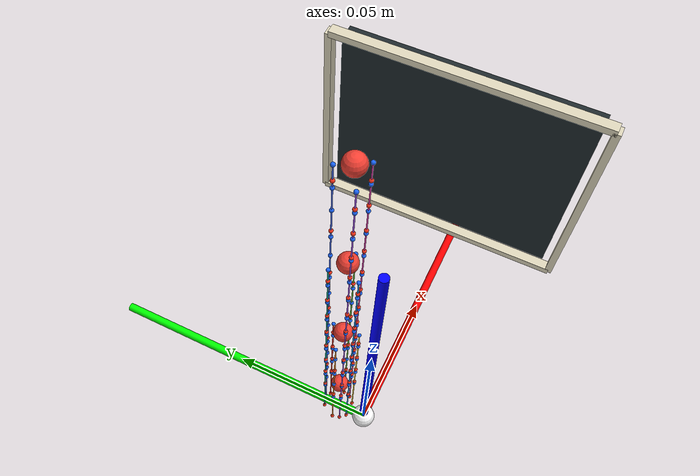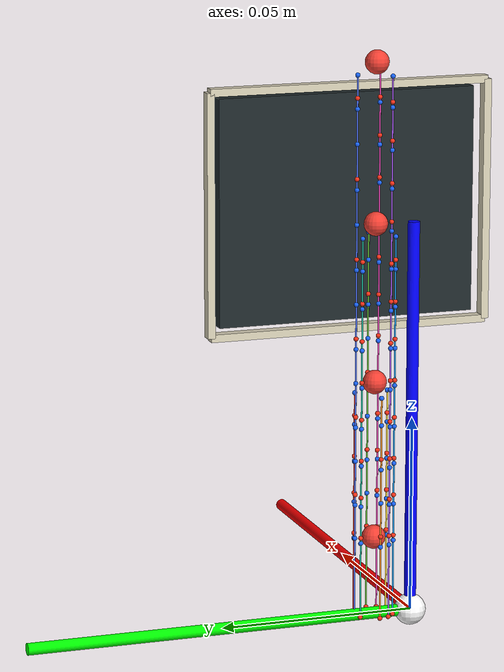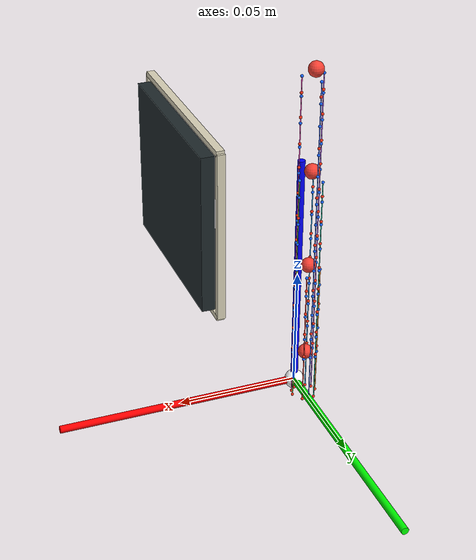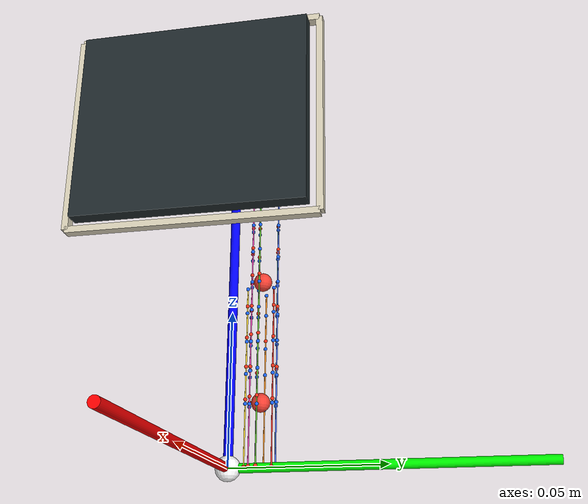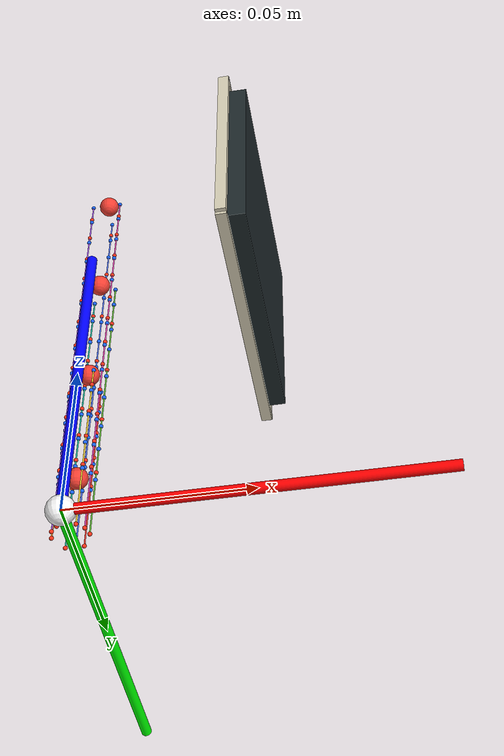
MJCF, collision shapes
<mujoco model="single_spatial_executor">
  <compiler angle="radian" />
  <option timestep="0.001" integrator="implicitfast" iterations="50" gravity="0 0 0" />
  <visual>
    <global azimuth="315" elevation="-25" offwidth="640" offheight="480" />
    <headlight ambient="0.35 0.35 0.35" diffuse="0.75 0.75 0.75" specular="0.2 0.2 0.2" />
    <map znear="0.001" zfar="2" />
    <quality shadowsize="2048" />
  </visual>
  <asset>
    <mesh name="shared_base_visual_mesh" file="../../assets/meshes/dual_arm/shared_base/dual_base_visual.stl" scale="0.001 0.001 0.001" />
    <mesh name="executor_base_visual_mesh" file="../../assets/meshes/dual_arm/executor/base_visual.stl" scale="0.001 0.001 0.001" />
    <mesh name="executor_segment_1_link_1_visual_mesh" file="../../assets/meshes/dual_arm/executor/segment_1_link_1_visual.stl" scale="0.001 0.001 0.001" />
    <mesh name="executor_segment_1_link_2_visual_mesh" file="../../assets/meshes/dual_arm/executor/segment_1_link_2_visual.stl" scale="0.001 0.001 0.001" />
    <mesh name="executor_segment_1_link_3_visual_mesh" file="../../assets/meshes/dual_arm/executor/segment_1_link_3_visual.stl" scale="0.001 0.001 0.001" />
    <mesh name="executor_segment_1_link_4_visual_mesh" file="../../assets/meshes/dual_arm/executor/segment_1_link_4_visual.stl" scale="0.001 0.001 0.001" />
    <mesh name="executor_segment_2_link_1_visual_mesh" file="../../assets/meshes/dual_arm/executor/segment_2_link_1_visual.stl" scale="0.001 0.001 0.001" />
    <mesh name="executor_segment_2_link_2_visual_mesh" file="../../assets/meshes/dual_arm/executor/segment_2_link_2_visual.stl" scale="0.001 0.001 0.001" />
    <mesh name="executor_segment_2_link_3_visual_mesh" file="../../assets/meshes/dual_arm/executor/segment_2_link_3_visual.stl" scale="0.001 0.001 0.001" />
    <mesh name="executor_segment_2_link_4_visual_mesh" file="../../assets/meshes/dual_arm/executor/segment_2_link_4_visual.stl" scale="0.001 0.001 0.001" />
    <mesh name="executor_segment_3_link_1_visual_mesh" file="../../assets/meshes/dual_arm/executor/segment_3_link_1_visual.stl" scale="0.001 0.001 0.001" />
    <mesh name="executor_segment_3_link_2_visual_mesh" file="../../assets/meshes/dual_arm/executor/segment_3_link_2_visual.stl" scale="0.001 0.001 0.001" />
    <mesh name="executor_segment_3_link_3_visual_mesh" file="../../assets/meshes/dual_arm/executor/segment_3_link_3_visual.stl" scale="0.001 0.001 0.001" />
    <mesh name="executor_segment_3_link_4_visual_mesh" file="../../assets/meshes/dual_arm/executor/segment_3_link_4_visual.stl" scale="0.001 0.001 0.001" />
  </asset>
  <default>
    <joint damping="0.2" armature="0.0001" limited="true" range="-0.25 0.25" stiffness="0.02" springref="0" />
    <geom type="capsule" size="0.004" density="1100" rgba="0.2 0.45 0.85 1" group="0" />
    <site size="0.003" rgba="0.95 0.25 0.2 1" />
  </default>
  <worldbody>
    <body name="mobile_base" pos="0 0 0" quat="1 0 0 0">
      <inertial pos="0 0 0" mass="1" diaginertia="0.001 0.001 0.001" />
      <site name="mobile_base_frame" type="sphere" pos="0 0 0" size="0.002" rgba="0.2 0.6 1 0.8" group="2" />
      <site name="dual_arm_mount" type="sphere" pos="0 0 0" quat="1 0 0 0" size="0.002" rgba="0.95 0.55 0.12 0.85" group="2" />
      <body name="dual_mobile_base" pos="0 0 0" quat="1 0 0 0">
        <site name="dual_mobile_base_frame" pos="0 0 0" quat="1 0 0 0" />
        <geom name="dual_mobile_base_visual" type="mesh" mesh="shared_base_visual_mesh" pos="-0 -0 -0" contype="0" conaffinity="0" density="0" group="1" />
        <body name="executor_base" pos="0 0.01 0.02" quat="1 0 0 0">
          <site name="executor_base_site" pos="0 0 0" quat="1 0 0 0" />
          <site name="executor_base_hole_01_in" pos="0.005 0 -0.02" size="0.0006" rgba="1 0.2 0.1 1" />
          <site name="executor_base_hole_01_out" pos="0.005 0 -0.00133975" size="0.0006" rgba="0.1 0.4 1 1" />
          <site name="executor_base_hole_03_in" pos="0.0025 0.00433013 -0.02" size="0.0006" rgba="1 0.2 0.1 1" />
          <site name="executor_base_hole_03_out" pos="0.0025 0.00433013 -0.00066987" size="0.0006" rgba="0.1 0.4 1 1" />
          <site name="executor_base_hole_04_in" pos="0 0.005 -0.02" size="0.0006" rgba="1 0.2 0.1 1" />
          <site name="executor_base_hole_04_out" pos="0 0.005 0" size="0.0006" rgba="0.1 0.4 1 1" />
          <site name="executor_base_hole_05_in" pos="-0.0025 0.00433013 -0.02" size="0.0006" rgba="1 0.2 0.1 1" />
          <site name="executor_base_hole_05_out" pos="-0.0025 0.00433013 -0.00066987" size="0.0006" rgba="0.1 0.4 1 1" />
          <site name="executor_base_hole_07_in" pos="-0.005 0 -0.02" size="0.0006" rgba="1 0.2 0.1 1" />
          <site name="executor_base_hole_07_out" pos="-0.005 0 -0.00133975" size="0.0006" rgba="0.1 0.4 1 1" />
          <site name="executor_base_hole_08_in" pos="-0.00433013 -0.0025 -0.02" size="0.0006" rgba="1 0.2 0.1 1" />
          <site name="executor_base_hole_08_out" pos="-0.00433013 -0.0025 -0.00116025" size="0.0006" rgba="0.1 0.4 1 1" />
          <site name="executor_base_hole_09_in" pos="-0.0025 -0.00433013 -0.02" size="0.0006" rgba="1 0.2 0.1 1" />
          <site name="executor_base_hole_09_out" pos="-0.0025 -0.00433013 -0.00066987" size="0.0006" rgba="0.1 0.4 1 1" />
          <site name="executor_base_hole_11_in" pos="0.0025 -0.00433013 -0.02" size="0.0006" rgba="1 0.2 0.1 1" />
          <site name="executor_base_hole_11_out" pos="0.0025 -0.00433013 -0.00066987" size="0.0006" rgba="0.1 0.4 1 1" />
          <site name="executor_base_hole_12_in" pos="0.00433013 -0.0025 -0.02" size="0.0006" rgba="1 0.2 0.1 1" />
          <site name="executor_base_hole_12_out" pos="0.00433013 -0.0025 -0.00116025" size="0.0006" rgba="0.1 0.4 1 1" />
          <geom name="executor_base_visual" type="mesh" mesh="executor_base_visual_mesh" pos="-0 -0.01 -0.02" contype="0" conaffinity="0" density="0" group="1" />
          <body name="executor_segment_1_link_1" pos="0 0 0">
            <joint name="executor_segment_1_link_1_x" type="hinge" axis="1 0 0" />
            <joint name="executor_segment_1_link_1_y" type="hinge" axis="0 1 0" />
            <geom name="executor_segment_1_link_1_collision" type="capsule" fromto="0 0 0 0 0 0.01" size="0.00625" group="0" contype="0" conaffinity="0" rgba="0.2 0.45 0.85 0" />
            <geom name="executor_segment_1_link_1_visual" type="mesh" mesh="executor_segment_1_link_1_visual_mesh" pos="-0 -0.01 -0.02" contype="0" conaffinity="0" density="0" group="1" />
            <site name="executor_segment_1_link_1_hole_01_in" pos="0.005 0 0.00133975" size="0.0006" rgba="1 0.2 0.1 1" />
            <site name="executor_segment_1_link_1_hole_03_in" pos="0.0025 0.00433013 0.00066987" size="0.0006" rgba="1 0.2 0.1 1" />
            <site name="executor_segment_1_link_1_hole_04_in" pos="0 0.005 0" size="0.0006" rgba="1 0.2 0.1 1" />
            <site name="executor_segment_1_link_1_hole_05_in" pos="-0.0025 0.00433013 0.00066987" size="0.0006" rgba="1 0.2 0.1 1" />
            <site name="executor_segment_1_link_1_hole_07_in" pos="-0.005 0 0.00133975" size="0.0006" rgba="1 0.2 0.1 1" />
            <site name="executor_segment_1_link_1_hole_08_in" pos="-0.00433013 -0.0025 0.00116025" size="0.0006" rgba="1 0.2 0.1 1" />
            <site name="executor_segment_1_link_1_hole_09_in" pos="-0.0025 -0.00433013 0.00066987" size="0.0006" rgba="1 0.2 0.1 1" />
            <site name="executor_segment_1_link_1_hole_11_in" pos="0.0025 -0.00433013 0.00066987" size="0.0006" rgba="1 0.2 0.1 1" />
            <site name="executor_segment_1_link_1_hole_12_in" pos="0.00433013 -0.0025 0.00116025" size="0.0006" rgba="1 0.2 0.1 1" />
            <site name="executor_segment_1_link_1_hole_01_out" pos="0.005 0 0.01" size="0.0006" rgba="0.1 0.4 1 1" />
            <site name="executor_segment_1_link_1_hole_03_out" pos="0.0025 0.00433013 0.00883975" size="0.0006" rgba="0.1 0.4 1 1" />
            <site name="executor_segment_1_link_1_hole_04_out" pos="0 0.005 0.00866025" size="0.0006" rgba="0.1 0.4 1 1" />
            <site name="executor_segment_1_link_1_hole_05_out" pos="-0.0025 0.00433013 0.00883975" size="0.0006" rgba="0.1 0.4 1 1" />
            <site name="executor_segment_1_link_1_hole_07_out" pos="-0.005 0 0.01" size="0.0006" rgba="0.1 0.4 1 1" />
            <site name="executor_segment_1_link_1_hole_08_out" pos="-0.00433013 -0.0025 0.00933013" size="0.0006" rgba="0.1 0.4 1 1" />
            <site name="executor_segment_1_link_1_hole_09_out" pos="-0.0025 -0.00433013 0.00883975" size="0.0006" rgba="0.1 0.4 1 1" />
            <site name="executor_segment_1_link_1_hole_11_out" pos="0.0025 -0.00433013 0.00883975" size="0.0006" rgba="0.1 0.4 1 1" />
            <site name="executor_segment_1_link_1_hole_12_out" pos="0.00433013 -0.0025 0.00933013" size="0.0006" rgba="0.1 0.4 1 1" />
            <body name="executor_segment_1_link_2" pos="0 0 0.01">
              <joint name="executor_segment_1_link_2_x" type="hinge" axis="1 0 0" />
              <joint name="executor_segment_1_link_2_y" type="hinge" axis="0 1 0" />
              <geom name="executor_segment_1_link_2_collision" type="capsule" fromto="0 0 0 0 0 0.01" size="0.00625" group="0" contype="0" conaffinity="0" rgba="0.2 0.45 0.85 0" />
              <geom name="executor_segment_1_link_2_visual" type="mesh" mesh="executor_segment_1_link_2_visual_mesh" pos="-0 -0.01 -0.03" contype="0" conaffinity="0" density="0" group="1" />
              <site name="executor_segment_1_link_2_hole_01_in" pos="0.005 0 0" size="0.0006" rgba="1 0.2 0.1 1" />
              <site name="executor_segment_1_link_2_hole_03_in" pos="0.0025 0.00433013 0.00116025" size="0.0006" rgba="1 0.2 0.1 1" />
              <site name="executor_segment_1_link_2_hole_04_in" pos="0 0.005 0.00133975" size="0.0006" rgba="1 0.2 0.1 1" />
              <site name="executor_segment_1_link_2_hole_05_in" pos="-0.0025 0.00433013 0.00116025" size="0.0006" rgba="1 0.2 0.1 1" />
              <site name="executor_segment_1_link_2_hole_07_in" pos="-0.005 0 0" size="0.0006" rgba="1 0.2 0.1 1" />
              <site name="executor_segment_1_link_2_hole_08_in" pos="-0.00433013 -0.0025 0.00066987" size="0.0006" rgba="1 0.2 0.1 1" />
              <site name="executor_segment_1_link_2_hole_09_in" pos="-0.0025 -0.00433013 0.00116025" size="0.0006" rgba="1 0.2 0.1 1" />
              <site name="executor_segment_1_link_2_hole_11_in" pos="0.0025 -0.00433013 0.00116025" size="0.0006" rgba="1 0.2 0.1 1" />
              <site name="executor_segment_1_link_2_hole_12_in" pos="0.00433013 -0.0025 0.00066987" size="0.0006" rgba="1 0.2 0.1 1" />
              <site name="executor_segment_1_link_2_hole_01_out" pos="0.005 0 0.00866025" size="0.0006" rgba="0.1 0.4 1 1" />
              <site name="executor_segment_1_link_2_hole_03_out" pos="0.0025 0.00433013 0.00933013" size="0.0006" rgba="0.1 0.4 1 1" />
              <site name="executor_segment_1_link_2_hole_04_out" pos="0 0.005 0.01" size="0.0006" rgba="0.1 0.4 1 1" />
              <site name="executor_segment_1_link_2_hole_05_out" pos="-0.0025 0.00433013 0.00933013" size="0.0006" rgba="0.1 0.4 1 1" />
              <site name="executor_segment_1_link_2_hole_07_out" pos="-0.005 0 0.00866025" size="0.0006" rgba="0.1 0.4 1 1" />
              <site name="executor_segment_1_link_2_hole_08_out" pos="-0.00433013 -0.0025 0.00883975" size="0.0006" rgba="0.1 0.4 1 1" />
              <site name="executor_segment_1_link_2_hole_09_out" pos="-0.0025 -0.00433013 0.00933013" size="0.0006" rgba="0.1 0.4 1 1" />
              <site name="executor_segment_1_link_2_hole_11_out" pos="0.0025 -0.00433013 0.00933013" size="0.0006" rgba="0.1 0.4 1 1" />
              <site name="executor_segment_1_link_2_hole_12_out" pos="0.00433013 -0.0025 0.00883975" size="0.0006" rgba="0.1 0.4 1 1" />
              <body name="executor_segment_1_link_3" pos="0 0 0.01">
                <joint name="executor_segment_1_link_3_x" type="hinge" axis="1 0 0" />
                <joint name="executor_segment_1_link_3_y" type="hinge" axis="0 1 0" />
                <geom name="executor_segment_1_link_3_collision" type="capsule" fromto="0 0 0 0 0 0.01" size="0.00625" group="0" contype="0" conaffinity="0" rgba="0.2 0.45 0.85 0" />
                <geom name="executor_segment_1_link_3_visual" type="mesh" mesh="executor_segment_1_link_3_visual_mesh" pos="-0 -0.01 -0.04" contype="0" conaffinity="0" density="0" group="1" />
                <site name="executor_segment_1_link_3_hole_01_in" pos="0.005 0 0.00133975" size="0.0006" rgba="1 0.2 0.1 1" />
                <site name="executor_segment_1_link_3_hole_03_in" pos="0.0025 0.00433013 0.00066987" size="0.0006" rgba="1 0.2 0.1 1" />
                <site name="executor_segment_1_link_3_hole_04_in" pos="0 0.005 0" size="0.0006" rgba="1 0.2 0.1 1" />
                <site name="executor_segment_1_link_3_hole_05_in" pos="-0.0025 0.00433013 0.00066987" size="0.0006" rgba="1 0.2 0.1 1" />
                <site name="executor_segment_1_link_3_hole_07_in" pos="-0.005 0 0.00133975" size="0.0006" rgba="1 0.2 0.1 1" />
                <site name="executor_segment_1_link_3_hole_08_in" pos="-0.00433013 -0.0025 0.00116025" size="0.0006" rgba="1 0.2 0.1 1" />
                <site name="executor_segment_1_link_3_hole_09_in" pos="-0.0025 -0.00433013 0.00066987" size="0.0006" rgba="1 0.2 0.1 1" />
                <site name="executor_segment_1_link_3_hole_11_in" pos="0.0025 -0.00433013 0.00066987" size="0.0006" rgba="1 0.2 0.1 1" />
                <site name="executor_segment_1_link_3_hole_12_in" pos="0.00433013 -0.0025 0.00116025" size="0.0006" rgba="1 0.2 0.1 1" />
                <site name="executor_segment_1_link_3_hole_01_out" pos="0.005 0 0.01" size="0.0006" rgba="0.1 0.4 1 1" />
                <site name="executor_segment_1_link_3_hole_03_out" pos="0.0025 0.00433013 0.00883975" size="0.0006" rgba="0.1 0.4 1 1" />
                <site name="executor_segment_1_link_3_hole_04_out" pos="0 0.005 0.00866025" size="0.0006" rgba="0.1 0.4 1 1" />
                <site name="executor_segment_1_link_3_hole_05_out" pos="-0.0025 0.00433013 0.00883975" size="0.0006" rgba="0.1 0.4 1 1" />
                <site name="executor_segment_1_link_3_hole_07_out" pos="-0.005 0 0.01" size="0.0006" rgba="0.1 0.4 1 1" />
                <site name="executor_segment_1_link_3_hole_08_out" pos="-0.00433013 -0.0025 0.00933013" size="0.0006" rgba="0.1 0.4 1 1" />
                <site name="executor_segment_1_link_3_hole_09_out" pos="-0.0025 -0.00433013 0.00883975" size="0.0006" rgba="0.1 0.4 1 1" />
                <site name="executor_segment_1_link_3_hole_11_out" pos="0.0025 -0.00433013 0.00883975" size="0.0006" rgba="0.1 0.4 1 1" />
                <site name="executor_segment_1_link_3_hole_12_out" pos="0.00433013 -0.0025 0.00933013" size="0.0006" rgba="0.1 0.4 1 1" />
                <body name="executor_segment_1_link_4" pos="0 0 0.01">
                  <joint name="executor_segment_1_link_4_x" type="hinge" axis="1 0 0" />
                  <joint name="executor_segment_1_link_4_y" type="hinge" axis="0 1 0" />
                  <geom name="executor_segment_1_link_4_collision" type="capsule" fromto="0 0 0 0 0 0.01" size="0.00625" group="0" contype="0" conaffinity="0" rgba="0.2 0.45 0.85 0" />
                  <geom name="executor_segment_1_link_4_visual" type="mesh" mesh="executor_segment_1_link_4_visual_mesh" pos="-0 -0.01 -0.05" contype="0" conaffinity="0" density="0" group="1" />
                  <site name="executor_segment_1_tip" pos="0 0 0.01" quat="1 0 0 0" />
                  <site name="executor_segment_1_link_4_hole_01_in" pos="0.005 0 0" size="0.0006" rgba="1 0.2 0.1 1" />
                  <site name="executor_segment_1_link_4_hole_03_in" pos="0.0025 0.00433013 0.00116025" size="0.0006" rgba="1 0.2 0.1 1" />
                  <site name="executor_segment_1_link_4_hole_04_in" pos="0 0.005 0.00133975" size="0.0006" rgba="1 0.2 0.1 1" />
                  <site name="executor_segment_1_link_4_hole_05_in" pos="-0.0025 0.00433013 0.00116025" size="0.0006" rgba="1 0.2 0.1 1" />
                  <site name="executor_segment_1_link_4_hole_07_in" pos="-0.005 0 0" size="0.0006" rgba="1 0.2 0.1 1" />
                  <site name="executor_segment_1_link_4_hole_08_in" pos="-0.00433013 -0.0025 0.00066987" size="0.0006" rgba="1 0.2 0.1 1" />
                  <site name="executor_segment_1_link_4_hole_09_in" pos="-0.0025 -0.00433013 0.00116025" size="0.0006" rgba="1 0.2 0.1 1" />
                  <site name="executor_segment_1_link_4_hole_11_in" pos="0.0025 -0.00433013 0.00116025" size="0.0006" rgba="1 0.2 0.1 1" />
                  <site name="executor_segment_1_link_4_hole_12_in" pos="0.00433013 -0.0025 0.00066987" size="0.0006" rgba="1 0.2 0.1 1" />
                  <site name="executor_segment_1_link_4_hole_01_out" pos="0.005 0 0.00866025" size="0.0006" rgba="0.1 0.4 1 1" />
                  <site name="executor_segment_1_link_4_hole_03_out" pos="0.0025 0.00433013 0.007" size="0.0006" rgba="0.1 0.4 1 1" />
                  <site name="executor_segment_1_link_4_hole_04_out" pos="0 0.005 0.01" size="0.0006" rgba="0.1 0.4 1 1" />
                  <site name="executor_segment_1_link_4_hole_05_out" pos="-0.0025 0.00433013 0.00933013" size="0.0006" rgba="0.1 0.4 1 1" />
                  <site name="executor_segment_1_link_4_hole_07_out" pos="-0.005 0 0.007" size="0.0006" rgba="0.1 0.4 1 1" />
                  <site name="executor_segment_1_link_4_hole_08_out" pos="-0.00433013 -0.0025 0.00883975" size="0.0006" rgba="0.1 0.4 1 1" />
                  <site name="executor_segment_1_link_4_hole_09_out" pos="-0.0025 -0.00433013 0.00933013" size="0.0006" rgba="0.1 0.4 1 1" />
                  <site name="executor_segment_1_link_4_hole_11_out" pos="0.0025 -0.00433013 0.007" size="0.0006" rgba="0.1 0.4 1 1" />
                  <site name="executor_segment_1_link_4_hole_12_out" pos="0.00433013 -0.0025 0.00883975" size="0.0006" rgba="0.1 0.4 1 1" />
                  <body name="executor_segment_2_link_1" pos="0 0 0.01">
                    <joint name="executor_segment_2_link_1_x" type="hinge" axis="1 0 0" />
                    <joint name="executor_segment_2_link_1_y" type="hinge" axis="0 1 0" />
                    <geom name="executor_segment_2_link_1_collision" type="capsule" fromto="0 0 0 0 0 0.01" size="0.00625" group="0" contype="0" conaffinity="0" rgba="0.2 0.45 0.85 0" />
                    <geom name="executor_segment_2_link_1_visual" type="mesh" mesh="executor_segment_2_link_1_visual_mesh" pos="-0 -0.01 -0.06" contype="0" conaffinity="0" density="0" group="1" />
                    <site name="executor_segment_2_link_1_hole_01_in" pos="0.005 0 0.00133975" size="0.0006" rgba="1 0.2 0.1 1" />
                    <site name="executor_segment_2_link_1_hole_04_in" pos="0 0.005 0" size="0.0006" rgba="1 0.2 0.1 1" />
                    <site name="executor_segment_2_link_1_hole_05_in" pos="-0.0025 0.00433013 0.00066987" size="0.0006" rgba="1 0.2 0.1 1" />
                    <site name="executor_segment_2_link_1_hole_08_in" pos="-0.00433013 -0.0025 0.00116025" size="0.0006" rgba="1 0.2 0.1 1" />
                    <site name="executor_segment_2_link_1_hole_09_in" pos="-0.0025 -0.00433013 0.00066987" size="0.0006" rgba="1 0.2 0.1 1" />
                    <site name="executor_segment_2_link_1_hole_12_in" pos="0.00433013 -0.0025 0.00116025" size="0.0006" rgba="1 0.2 0.1 1" />
                    <site name="executor_segment_2_link_1_hole_01_out" pos="0.005 0 0.01" size="0.0006" rgba="0.1 0.4 1 1" />
                    <site name="executor_segment_2_link_1_hole_04_out" pos="0 0.005 0.00866025" size="0.0006" rgba="0.1 0.4 1 1" />
                    <site name="executor_segment_2_link_1_hole_05_out" pos="-0.0025 0.00433013 0.00883975" size="0.0006" rgba="0.1 0.4 1 1" />
                    <site name="executor_segment_2_link_1_hole_08_out" pos="-0.00433013 -0.0025 0.00933013" size="0.0006" rgba="0.1 0.4 1 1" />
                    <site name="executor_segment_2_link_1_hole_09_out" pos="-0.0025 -0.00433013 0.00883975" size="0.0006" rgba="0.1 0.4 1 1" />
                    <site name="executor_segment_2_link_1_hole_12_out" pos="0.00433013 -0.0025 0.00933013" size="0.0006" rgba="0.1 0.4 1 1" />
                    <body name="executor_segment_2_link_2" pos="0 0 0.01">
                      <joint name="executor_segment_2_link_2_x" type="hinge" axis="1 0 0" />
                      <joint name="executor_segment_2_link_2_y" type="hinge" axis="0 1 0" />
                      <geom name="executor_segment_2_link_2_collision" type="capsule" fromto="0 0 0 0 0 0.01" size="0.00625" group="0" contype="0" conaffinity="0" rgba="0.2 0.45 0.85 0" />
                      <geom name="executor_segment_2_link_2_visual" type="mesh" mesh="executor_segment_2_link_2_visual_mesh" pos="-0 -0.01 -0.07" contype="0" conaffinity="0" density="0" group="1" />
                      <site name="executor_segment_2_link_2_hole_01_in" pos="0.005 0 0" size="0.0006" rgba="1 0.2 0.1 1" />
                      <site name="executor_segment_2_link_2_hole_04_in" pos="0 0.005 0.00133975" size="0.0006" rgba="1 0.2 0.1 1" />
                      <site name="executor_segment_2_link_2_hole_05_in" pos="-0.0025 0.00433013 0.00116025" size="0.0006" rgba="1 0.2 0.1 1" />
                      <site name="executor_segment_2_link_2_hole_08_in" pos="-0.00433013 -0.0025 0.00066987" size="0.0006" rgba="1 0.2 0.1 1" />
                      <site name="executor_segment_2_link_2_hole_09_in" pos="-0.0025 -0.00433013 0.00116025" size="0.0006" rgba="1 0.2 0.1 1" />
                      <site name="executor_segment_2_link_2_hole_12_in" pos="0.00433013 -0.0025 0.00066987" size="0.0006" rgba="1 0.2 0.1 1" />
                      <site name="executor_segment_2_link_2_hole_01_out" pos="0.005 0 0.00866025" size="0.0006" rgba="0.1 0.4 1 1" />
                      <site name="executor_segment_2_link_2_hole_04_out" pos="0 0.005 0.01" size="0.0006" rgba="0.1 0.4 1 1" />
                      <site name="executor_segment_2_link_2_hole_05_out" pos="-0.0025 0.00433013 0.00933013" size="0.0006" rgba="0.1 0.4 1 1" />
                      <site name="executor_segment_2_link_2_hole_08_out" pos="-0.00433013 -0.0025 0.00883975" size="0.0006" rgba="0.1 0.4 1 1" />
                      <site name="executor_segment_2_link_2_hole_09_out" pos="-0.0025 -0.00433013 0.00933013" size="0.0006" rgba="0.1 0.4 1 1" />
                      <site name="executor_segment_2_link_2_hole_12_out" pos="0.00433013 -0.0025 0.00883975" size="0.0006" rgba="0.1 0.4 1 1" />
                      <body name="executor_segment_2_link_3" pos="0 0 0.01">
                        <joint name="executor_segment_2_link_3_x" type="hinge" axis="1 0 0" />
                        <joint name="executor_segment_2_link_3_y" type="hinge" axis="0 1 0" />
                        <geom name="executor_segment_2_link_3_collision" type="capsule" fromto="0 0 0 0 0 0.01" size="0.00625" group="0" contype="0" conaffinity="0" rgba="0.2 0.45 0.85 0" />
                        <geom name="executor_segment_2_link_3_visual" type="mesh" mesh="executor_segment_2_link_3_visual_mesh" pos="-0 -0.01 -0.08" contype="0" conaffinity="0" density="0" group="1" />
                        <site name="executor_segment_2_link_3_hole_01_in" pos="0.005 0 0.00133975" size="0.0006" rgba="1 0.2 0.1 1" />
                        <site name="executor_segment_2_link_3_hole_04_in" pos="0 0.005 0" size="0.0006" rgba="1 0.2 0.1 1" />
                        <site name="executor_segment_2_link_3_hole_05_in" pos="-0.0025 0.00433013 0.00066987" size="0.0006" rgba="1 0.2 0.1 1" />
                        <site name="executor_segment_2_link_3_hole_08_in" pos="-0.00433013 -0.0025 0.00116025" size="0.0006" rgba="1 0.2 0.1 1" />
                        <site name="executor_segment_2_link_3_hole_09_in" pos="-0.0025 -0.00433013 0.00066987" size="0.0006" rgba="1 0.2 0.1 1" />
                        <site name="executor_segment_2_link_3_hole_12_in" pos="0.00433013 -0.0025 0.00116025" size="0.0006" rgba="1 0.2 0.1 1" />
                        <site name="executor_segment_2_link_3_hole_01_out" pos="0.005 0 0.01" size="0.0006" rgba="0.1 0.4 1 1" />
                        <site name="executor_segment_2_link_3_hole_04_out" pos="0 0.005 0.00866025" size="0.0006" rgba="0.1 0.4 1 1" />
                        <site name="executor_segment_2_link_3_hole_05_out" pos="-0.0025 0.00433013 0.00883975" size="0.0006" rgba="0.1 0.4 1 1" />
                        <site name="executor_segment_2_link_3_hole_08_out" pos="-0.00433013 -0.0025 0.00933013" size="0.0006" rgba="0.1 0.4 1 1" />
                        <site name="executor_segment_2_link_3_hole_09_out" pos="-0.0025 -0.00433013 0.00883975" size="0.0006" rgba="0.1 0.4 1 1" />
                        <site name="executor_segment_2_link_3_hole_12_out" pos="0.00433013 -0.0025 0.00933013" size="0.0006" rgba="0.1 0.4 1 1" />
                        <body name="executor_segment_2_link_4" pos="0 0 0.01">
                          <joint name="executor_segment_2_link_4_x" type="hinge" axis="1 0 0" />
                          <joint name="executor_segment_2_link_4_y" type="hinge" axis="0 1 0" />
                          <geom name="executor_segment_2_link_4_collision" type="capsule" fromto="0 0 0 0 0 0.01" size="0.00625" group="0" contype="0" conaffinity="0" rgba="0.2 0.45 0.85 0" />
                          <geom name="executor_segment_2_link_4_visual" type="mesh" mesh="executor_segment_2_link_4_visual_mesh" pos="-0 -0.01 -0.09" contype="0" conaffinity="0" density="0" group="1" />
                          <site name="executor_segment_2_tip" pos="0 0 0.01" quat="1 0 0 0" />
                          <site name="executor_segment_2_link_4_hole_01_in" pos="0.005 0 0" size="0.0006" rgba="1 0.2 0.1 1" />
                          <site name="executor_segment_2_link_4_hole_04_in" pos="0 0.005 0.00133975" size="0.0006" rgba="1 0.2 0.1 1" />
                          <site name="executor_segment_2_link_4_hole_05_in" pos="-0.0025 0.00433013 0.00116025" size="0.0006" rgba="1 0.2 0.1 1" />
                          <site name="executor_segment_2_link_4_hole_08_in" pos="-0.00433013 -0.0025 0.00066987" size="0.0006" rgba="1 0.2 0.1 1" />
                          <site name="executor_segment_2_link_4_hole_09_in" pos="-0.0025 -0.00433013 0.00116025" size="0.0006" rgba="1 0.2 0.1 1" />
                          <site name="executor_segment_2_link_4_hole_12_in" pos="0.00433013 -0.0025 0.00066987" size="0.0006" rgba="1 0.2 0.1 1" />
                          <site name="executor_segment_2_link_4_hole_01_out" pos="0.005 0 0.007" size="0.0006" rgba="0.1 0.4 1 1" />
                          <site name="executor_segment_2_link_4_hole_04_out" pos="0 0.005 0.01" size="0.0006" rgba="0.1 0.4 1 1" />
                          <site name="executor_segment_2_link_4_hole_05_out" pos="-0.0025 0.00433013 0.007" size="0.0006" rgba="0.1 0.4 1 1" />
                          <site name="executor_segment_2_link_4_hole_08_out" pos="-0.00433013 -0.0025 0.00883975" size="0.0006" rgba="0.1 0.4 1 1" />
                          <site name="executor_segment_2_link_4_hole_09_out" pos="-0.0025 -0.00433013 0.007" size="0.0006" rgba="0.1 0.4 1 1" />
                          <site name="executor_segment_2_link_4_hole_12_out" pos="0.00433013 -0.0025 0.00883975" size="0.0006" rgba="0.1 0.4 1 1" />
                          <body name="executor_segment_3_link_1" pos="0 0 0.01">
                            <joint name="executor_segment_3_link_1_x" type="hinge" axis="1 0 0" />
                            <joint name="executor_segment_3_link_1_y" type="hinge" axis="0 1 0" />
                            <geom name="executor_segment_3_link_1_collision" type="capsule" fromto="0 0 0 0 0 0.01" size="0.00625" group="0" contype="0" conaffinity="0" rgba="0.2 0.45 0.85 0" />
                            <geom name="executor_segment_3_link_1_visual" type="mesh" mesh="executor_segment_3_link_1_visual_mesh" pos="-0 -0.01 -0.1" contype="0" conaffinity="0" density="0" group="1" />
                            <site name="executor_segment_3_link_1_hole_04_in" pos="0 0.005 0" size="0.0006" rgba="1 0.2 0.1 1" />
                            <site name="executor_segment_3_link_1_hole_08_in" pos="-0.00433013 -0.0025 0.00116025" size="0.0006" rgba="1 0.2 0.1 1" />
                            <site name="executor_segment_3_link_1_hole_12_in" pos="0.00433013 -0.0025 0.00116025" size="0.0006" rgba="1 0.2 0.1 1" />
                            <site name="executor_segment_3_link_1_hole_04_out" pos="0 0.005 0.00866025" size="0.0006" rgba="0.1 0.4 1 1" />
                            <site name="executor_segment_3_link_1_hole_08_out" pos="-0.00433013 -0.0025 0.00933013" size="0.0006" rgba="0.1 0.4 1 1" />
                            <site name="executor_segment_3_link_1_hole_12_out" pos="0.00433013 -0.0025 0.00933013" size="0.0006" rgba="0.1 0.4 1 1" />
                            <body name="executor_segment_3_link_2" pos="0 0 0.01">
                              <joint name="executor_segment_3_link_2_x" type="hinge" axis="1 0 0" />
                              <joint name="executor_segment_3_link_2_y" type="hinge" axis="0 1 0" />
                              <geom name="executor_segment_3_link_2_collision" type="capsule" fromto="0 0 0 0 0 0.01" size="0.00625" group="0" contype="0" conaffinity="0" rgba="0.2 0.45 0.85 0" />
                              <geom name="executor_segment_3_link_2_visual" type="mesh" mesh="executor_segment_3_link_2_visual_mesh" pos="-0 -0.01 -0.11" contype="0" conaffinity="0" density="0" group="1" />
                              <site name="executor_segment_3_link_2_hole_04_in" pos="0 0.005 0.00133975" size="0.0006" rgba="1 0.2 0.1 1" />
                              <site name="executor_segment_3_link_2_hole_08_in" pos="-0.00433013 -0.0025 0.00066987" size="0.0006" rgba="1 0.2 0.1 1" />
                              <site name="executor_segment_3_link_2_hole_12_in" pos="0.00433013 -0.0025 0.00066987" size="0.0006" rgba="1 0.2 0.1 1" />
                              <site name="executor_segment_3_link_2_hole_04_out" pos="0 0.005 0.01" size="0.0006" rgba="0.1 0.4 1 1" />
                              <site name="executor_segment_3_link_2_hole_08_out" pos="-0.00433013 -0.0025 0.00883975" size="0.0006" rgba="0.1 0.4 1 1" />
                              <site name="executor_segment_3_link_2_hole_12_out" pos="0.00433013 -0.0025 0.00883975" size="0.0006" rgba="0.1 0.4 1 1" />
                              <body name="executor_segment_3_link_3" pos="0 0 0.01">
                                <joint name="executor_segment_3_link_3_x" type="hinge" axis="1 0 0" />
                                <joint name="executor_segment_3_link_3_y" type="hinge" axis="0 1 0" />
                                <geom name="executor_segment_3_link_3_collision" type="capsule" fromto="0 0 0 0 0 0.01" size="0.00625" group="0" contype="0" conaffinity="0" rgba="0.2 0.45 0.85 0" />
                                <geom name="executor_segment_3_link_3_visual" type="mesh" mesh="executor_segment_3_link_3_visual_mesh" pos="-0 -0.01 -0.12" contype="0" conaffinity="0" density="0" group="1" />
                                <site name="executor_segment_3_link_3_hole_04_in" pos="0 0.005 0" size="0.0006" rgba="1 0.2 0.1 1" />
                                <site name="executor_segment_3_link_3_hole_08_in" pos="-0.00433013 -0.0025 0.00116025" size="0.0006" rgba="1 0.2 0.1 1" />
                                <site name="executor_segment_3_link_3_hole_12_in" pos="0.00433013 -0.0025 0.00116025" size="0.0006" rgba="1 0.2 0.1 1" />
                                <site name="executor_segment_3_link_3_hole_04_out" pos="0 0.005 0.00866025" size="0.0006" rgba="0.1 0.4 1 1" />
                                <site name="executor_segment_3_link_3_hole_08_out" pos="-0.00433013 -0.0025 0.00933013" size="0.0006" rgba="0.1 0.4 1 1" />
                                <site name="executor_segment_3_link_3_hole_12_out" pos="0.00433013 -0.0025 0.00933013" size="0.0006" rgba="0.1 0.4 1 1" />
                                <body name="executor_segment_3_link_4" pos="0 0 0.01">
                                  <joint name="executor_segment_3_link_4_x" type="hinge" axis="1 0 0" />
                                  <joint name="executor_segment_3_link_4_y" type="hinge" axis="0 1 0" />
                                  <geom name="executor_segment_3_link_4_collision" type="capsule" fromto="0 0 0 0 0 0.01" size="0.00625" group="0" contype="0" conaffinity="0" rgba="0.2 0.45 0.85 0" />
                                  <geom name="executor_segment_3_link_4_visual" type="mesh" mesh="executor_segment_3_link_4_visual_mesh" pos="-0 -0.01 -0.13" contype="0" conaffinity="0" density="0" group="1" />
                                  <site name="executor_segment_3_tip" pos="0 0 0.01" quat="1 0 0 0" />
                                  <site name="executor_tip" pos="0 0 0.01" quat="1 0 0 0" />
                                  <site name="executor_segment_3_link_4_hole_04_in" pos="0 0.005 0.00133975" size="0.0006" rgba="1 0.2 0.1 1" />
                                  <site name="executor_segment_3_link_4_hole_08_in" pos="-0.00433013 -0.0025 0.00066987" size="0.0006" rgba="1 0.2 0.1 1" />
                                  <site name="executor_segment_3_link_4_hole_12_in" pos="0.00433013 -0.0025 0.00066987" size="0.0006" rgba="1 0.2 0.1 1" />
                                  <site name="executor_segment_3_link_4_hole_04_out" pos="0 0.005 0.007" size="0.0006" rgba="0.1 0.4 1 1" />
                                  <site name="executor_segment_3_link_4_hole_08_out" pos="-0.00433013 -0.0025 0.007" size="0.0006" rgba="0.1 0.4 1 1" />
                                  <site name="executor_segment_3_link_4_hole_12_out" pos="0.00433013 -0.0025 0.007" size="0.0006" rgba="0.1 0.4 1 1" />
                                </body>
                              </body>
                            </body>
                          </body>
                        </body>
                      </body>
                    </body>
                  </body>
                </body>
              </body>
            </body>
          </body>
        </body>
      </body>
    </body>
    <site name="world_origin" type="sphere" pos="0 0 0" size="0.004" rgba="1 1 1 1" group="2" />
    <site name="world_x_axis" type="cylinder" fromto="0 0 0 0.1 0 0" size="0.0015" rgba="1 0 0 1" group="2" />
    <site name="world_y_axis" type="cylinder" fromto="0 0 0 0 0.1 0" size="0.0015" rgba="0 1 0 1" group="2" />
    <site name="world_z_axis" type="cylinder" fromto="0 0 0 0 0 0.1" size="0.0015" rgba="0 0 1 1" group="2" />
    <body name="scene_wiping_board" pos="0 0 0">
      <geom name="scene_board_surface_geom" type="box" pos="0.05 0 0.095" size="0.0025 0.035 0.03" rgba="0.12 0.16 0.17 1" group="0" contype="1" conaffinity="1" />
      <geom name="scene_board_frame_top" type="box" pos="0.0465 0 0.127" size="0.0015 0.038 0.001" rgba="0.85 0.82 0.72 1" group="0" contype="1" conaffinity="1" />
      <geom name="scene_board_frame_bottom" type="box" pos="0.0465 0 0.063" size="0.0015 0.038 0.001" rgba="0.85 0.82 0.72 1" group="0" contype="1" conaffinity="1" />
      <geom name="scene_board_frame_left" type="box" pos="0.0465 -0.038 0.095" size="0.0015 0.001 0.032" rgba="0.85 0.82 0.72 1" group="0" contype="1" conaffinity="1" />
      <geom name="scene_board_frame_right" type="box" pos="0.0465 0.038 0.095" size="0.0015 0.001 0.032" rgba="0.85 0.82 0.72 1" group="0" contype="1" conaffinity="1" />
    </body>
  </worldbody>
  <tendon>
    <spatial name="executor_tendon_1" damping="0" stiffness="0" width="0.0002" rgba="0.92 0.2 0.16 1">
      <site site="executor_base_hole_03_in" />
      <site site="executor_base_hole_03_out" />
      <site site="executor_segment_1_link_1_hole_03_in" />
      <site site="executor_segment_1_link_1_hole_03_out" />
      <site site="executor_segment_1_link_2_hole_03_in" />
      <site site="executor_segment_1_link_2_hole_03_out" />
      <site site="executor_segment_1_link_3_hole_03_in" />
      <site site="executor_segment_1_link_3_hole_03_out" />
      <site site="executor_segment_1_link_4_hole_03_in" />
      <site site="executor_segment_1_link_4_hole_03_out" />
    </spatial>
    <spatial name="executor_tendon_2" damping="0" stiffness="0" width="0.0002" rgba="0.95 0.55 0.12 1">
      <site site="executor_base_hole_07_in" />
      <site site="executor_base_hole_07_out" />
      <site site="executor_segment_1_link_1_hole_07_in" />
      <site site="executor_segment_1_link_1_hole_07_out" />
      <site site="executor_segment_1_link_2_hole_07_in" />
      <site site="executor_segment_1_link_2_hole_07_out" />
      <site site="executor_segment_1_link_3_hole_07_in" />
      <site site="executor_segment_1_link_3_hole_07_out" />
      <site site="executor_segment_1_link_4_hole_07_in" />
      <site site="executor_segment_1_link_4_hole_07_out" />
    </spatial>
    <spatial name="executor_tendon_3" damping="0" stiffness="0" width="0.0002" rgba="0.98 0.84 0.2 1">
      <site site="executor_base_hole_11_in" />
      <site site="executor_base_hole_11_out" />
      <site site="executor_segment_1_link_1_hole_11_in" />
      <site site="executor_segment_1_link_1_hole_11_out" />
      <site site="executor_segment_1_link_2_hole_11_in" />
      <site site="executor_segment_1_link_2_hole_11_out" />
      <site site="executor_segment_1_link_3_hole_11_in" />
      <site site="executor_segment_1_link_3_hole_11_out" />
      <site site="executor_segment_1_link_4_hole_11_in" />
      <site site="executor_segment_1_link_4_hole_11_out" />
    </spatial>
    <spatial name="executor_tendon_4" damping="0" stiffness="0" width="0.0002" rgba="0.36 0.73 0.19 1">
      <site site="executor_base_hole_01_in" />
      <site site="executor_base_hole_01_out" />
      <site site="executor_segment_1_link_1_hole_01_in" />
      <site site="executor_segment_1_link_1_hole_01_out" />
      <site site="executor_segment_1_link_2_hole_01_in" />
      <site site="executor_segment_1_link_2_hole_01_out" />
      <site site="executor_segment_1_link_3_hole_01_in" />
      <site site="executor_segment_1_link_3_hole_01_out" />
      <site site="executor_segment_1_link_4_hole_01_in" />
      <site site="executor_segment_1_link_4_hole_01_out" />
      <site site="executor_segment_2_link_1_hole_01_in" />
      <site site="executor_segment_2_link_1_hole_01_out" />
      <site site="executor_segment_2_link_2_hole_01_in" />
      <site site="executor_segment_2_link_2_hole_01_out" />
      <site site="executor_segment_2_link_3_hole_01_in" />
      <site site="executor_segment_2_link_3_hole_01_out" />
      <site site="executor_segment_2_link_4_hole_01_in" />
      <site site="executor_segment_2_link_4_hole_01_out" />
    </spatial>
    <spatial name="executor_tendon_5" damping="0" stiffness="0" width="0.0002" rgba="0.1 0.73 0.61 1">
      <site site="executor_base_hole_05_in" />
      <site site="executor_base_hole_05_out" />
      <site site="executor_segment_1_link_1_hole_05_in" />
      <site site="executor_segment_1_link_1_hole_05_out" />
      <site site="executor_segment_1_link_2_hole_05_in" />
      <site site="executor_segment_1_link_2_hole_05_out" />
      <site site="executor_segment_1_link_3_hole_05_in" />
      <site site="executor_segment_1_link_3_hole_05_out" />
      <site site="executor_segment_1_link_4_hole_05_in" />
      <site site="executor_segment_1_link_4_hole_05_out" />
      <site site="executor_segment_2_link_1_hole_05_in" />
      <site site="executor_segment_2_link_1_hole_05_out" />
      <site site="executor_segment_2_link_2_hole_05_in" />
      <site site="executor_segment_2_link_2_hole_05_out" />
      <site site="executor_segment_2_link_3_hole_05_in" />
      <site site="executor_segment_2_link_3_hole_05_out" />
      <site site="executor_segment_2_link_4_hole_05_in" />
      <site site="executor_segment_2_link_4_hole_05_out" />
    </spatial>
    <spatial name="executor_tendon_6" damping="0" stiffness="0" width="0.0002" rgba="0.09 0.6 0.92 1">
      <site site="executor_base_hole_09_in" />
      <site site="executor_base_hole_09_out" />
      <site site="executor_segment_1_link_1_hole_09_in" />
      <site site="executor_segment_1_link_1_hole_09_out" />
      <site site="executor_segment_1_link_2_hole_09_in" />
      <site site="executor_segment_1_link_2_hole_09_out" />
      <site site="executor_segment_1_link_3_hole_09_in" />
      <site site="executor_segment_1_link_3_hole_09_out" />
      <site site="executor_segment_1_link_4_hole_09_in" />
      <site site="executor_segment_1_link_4_hole_09_out" />
      <site site="executor_segment_2_link_1_hole_09_in" />
      <site site="executor_segment_2_link_1_hole_09_out" />
      <site site="executor_segment_2_link_2_hole_09_in" />
      <site site="executor_segment_2_link_2_hole_09_out" />
      <site site="executor_segment_2_link_3_hole_09_in" />
      <site site="executor_segment_2_link_3_hole_09_out" />
      <site site="executor_segment_2_link_4_hole_09_in" />
      <site site="executor_segment_2_link_4_hole_09_out" />
    </spatial>
    <spatial name="executor_tendon_7" damping="0" stiffness="0" width="0.0002" rgba="0.29 0.43 0.95 1">
      <site site="executor_base_hole_04_in" />
      <site site="executor_base_hole_04_out" />
      <site site="executor_segment_1_link_1_hole_04_in" />
      <site site="executor_segment_1_link_1_hole_04_out" />
      <site site="executor_segment_1_link_2_hole_04_in" />
      <site site="executor_segment_1_link_2_hole_04_out" />
      <site site="executor_segment_1_link_3_hole_04_in" />
      <site site="executor_segment_1_link_3_hole_04_out" />
      <site site="executor_segment_1_link_4_hole_04_in" />
      <site site="executor_segment_1_link_4_hole_04_out" />
      <site site="executor_segment_2_link_1_hole_04_in" />
      <site site="executor_segment_2_link_1_hole_04_out" />
      <site site="executor_segment_2_link_2_hole_04_in" />
      <site site="executor_segment_2_link_2_hole_04_out" />
      <site site="executor_segment_2_link_3_hole_04_in" />
      <site site="executor_segment_2_link_3_hole_04_out" />
      <site site="executor_segment_2_link_4_hole_04_in" />
      <site site="executor_segment_2_link_4_hole_04_out" />
      <site site="executor_segment_3_link_1_hole_04_in" />
      <site site="executor_segment_3_link_1_hole_04_out" />
      <site site="executor_segment_3_link_2_hole_04_in" />
      <site site="executor_segment_3_link_2_hole_04_out" />
      <site site="executor_segment_3_link_3_hole_04_in" />
      <site site="executor_segment_3_link_3_hole_04_out" />
      <site site="executor_segment_3_link_4_hole_04_in" />
      <site site="executor_segment_3_link_4_hole_04_out" />
    </spatial>
    <spatial name="executor_tendon_8" damping="0" stiffness="0" width="0.0002" rgba="0.64 0.33 0.94 1">
      <site site="executor_base_hole_08_in" />
      <site site="executor_base_hole_08_out" />
      <site site="executor_segment_1_link_1_hole_08_in" />
      <site site="executor_segment_1_link_1_hole_08_out" />
      <site site="executor_segment_1_link_2_hole_08_in" />
      <site site="executor_segment_1_link_2_hole_08_out" />
      <site site="executor_segment_1_link_3_hole_08_in" />
      <site site="executor_segment_1_link_3_hole_08_out" />
      <site site="executor_segment_1_link_4_hole_08_in" />
      <site site="executor_segment_1_link_4_hole_08_out" />
      <site site="executor_segment_2_link_1_hole_08_in" />
      <site site="executor_segment_2_link_1_hole_08_out" />
      <site site="executor_segment_2_link_2_hole_08_in" />
      <site site="executor_segment_2_link_2_hole_08_out" />
      <site site="executor_segment_2_link_3_hole_08_in" />
      <site site="executor_segment_2_link_3_hole_08_out" />
      <site site="executor_segment_2_link_4_hole_08_in" />
      <site site="executor_segment_2_link_4_hole_08_out" />
      <site site="executor_segment_3_link_1_hole_08_in" />
      <site site="executor_segment_3_link_1_hole_08_out" />
      <site site="executor_segment_3_link_2_hole_08_in" />
      <site site="executor_segment_3_link_2_hole_08_out" />
      <site site="executor_segment_3_link_3_hole_08_in" />
      <site site="executor_segment_3_link_3_hole_08_out" />
      <site site="executor_segment_3_link_4_hole_08_in" />
      <site site="executor_segment_3_link_4_hole_08_out" />
    </spatial>
    <spatial name="executor_tendon_9" damping="0" stiffness="0" width="0.0002" rgba="0.9 0.26 0.7 1">
      <site site="executor_base_hole_12_in" />
      <site site="executor_base_hole_12_out" />
      <site site="executor_segment_1_link_1_hole_12_in" />
      <site site="executor_segment_1_link_1_hole_12_out" />
      <site site="executor_segment_1_link_2_hole_12_in" />
      <site site="executor_segment_1_link_2_hole_12_out" />
      <site site="executor_segment_1_link_3_hole_12_in" />
      <site site="executor_segment_1_link_3_hole_12_out" />
      <site site="executor_segment_1_link_4_hole_12_in" />
      <site site="executor_segment_1_link_4_hole_12_out" />
      <site site="executor_segment_2_link_1_hole_12_in" />
      <site site="executor_segment_2_link_1_hole_12_out" />
      <site site="executor_segment_2_link_2_hole_12_in" />
      <site site="executor_segment_2_link_2_hole_12_out" />
      <site site="executor_segment_2_link_3_hole_12_in" />
      <site site="executor_segment_2_link_3_hole_12_out" />
      <site site="executor_segment_2_link_4_hole_12_in" />
      <site site="executor_segment_2_link_4_hole_12_out" />
      <site site="executor_segment_3_link_1_hole_12_in" />
      <site site="executor_segment_3_link_1_hole_12_out" />
      <site site="executor_segment_3_link_2_hole_12_in" />
      <site site="executor_segment_3_link_2_hole_12_out" />
      <site site="executor_segment_3_link_3_hole_12_in" />
      <site site="executor_segment_3_link_3_hole_12_out" />
      <site site="executor_segment_3_link_4_hole_12_in" />
      <site site="executor_segment_3_link_4_hole_12_out" />
    </spatial>
  </tendon>
  <actuator>
    <position name="act_executor_tendon_1" tendon="executor_tendon_1" kp="40000" forcelimited="true" forcerange="-30 30" ctrllimited="false" />
    <position name="act_executor_tendon_2" tendon="executor_tendon_2" kp="40000" forcelimited="true" forcerange="-30 30" ctrllimited="false" />
    <position name="act_executor_tendon_3" tendon="executor_tendon_3" kp="40000" forcelimited="true" forcerange="-30 30" ctrllimited="false" />
    <position name="act_executor_tendon_4" tendon="executor_tendon_4" kp="40000" forcelimited="true" forcerange="-30 30" ctrllimited="false" />
    <position name="act_executor_tendon_5" tendon="executor_tendon_5" kp="40000" forcelimited="true" forcerange="-30 30" ctrllimited="false" />
    <position name="act_executor_tendon_6" tendon="executor_tendon_6" kp="40000" forcelimited="true" forcerange="-30 30" ctrllimited="false" />
    <position name="act_executor_tendon_7" tendon="executor_tendon_7" kp="40000" forcelimited="true" forcerange="-30 30" ctrllimited="false" />
    <position name="act_executor_tendon_8" tendon="executor_tendon_8" kp="40000" forcelimited="true" forcerange="-30 30" ctrllimited="false" />
    <position name="act_executor_tendon_9" tendon="executor_tendon_9" kp="40000" forcelimited="true" forcerange="-30 30" ctrllimited="false" />
  </actuator>
  <sensor>
    <tendonpos name="sensor_executor_tendon_1_length" tendon="executor_tendon_1" />
    <tendonvel name="sensor_executor_tendon_1_velocity" tendon="executor_tendon_1" />
    <actuatorfrc name="sensor_executor_tendon_1_actuator_force" actuator="act_executor_tendon_1" />
    <tendonpos name="sensor_executor_tendon_2_length" tendon="executor_tendon_2" />
    <tendonvel name="sensor_executor_tendon_2_velocity" tendon="executor_tendon_2" />
    <actuatorfrc name="sensor_executor_tendon_2_actuator_force" actuator="act_executor_tendon_2" />
    <tendonpos name="sensor_executor_tendon_3_length" tendon="executor_tendon_3" />
    <tendonvel name="sensor_executor_tendon_3_velocity" tendon="executor_tendon_3" />
    <actuatorfrc name="sensor_executor_tendon_3_actuator_force" actuator="act_executor_tendon_3" />
    <tendonpos name="sensor_executor_tendon_4_length" tendon="executor_tendon_4" />
    <tendonvel name="sensor_executor_tendon_4_velocity" tendon="executor_tendon_4" />
    <actuatorfrc name="sensor_executor_tendon_4_actuator_force" actuator="act_executor_tendon_4" />
    <tendonpos name="sensor_executor_tendon_5_length" tendon="executor_tendon_5" />
    <tendonvel name="sensor_executor_tendon_5_velocity" tendon="executor_tendon_5" />
    <actuatorfrc name="sensor_executor_tendon_5_actuator_force" actuator="act_executor_tendon_5" />
    <tendonpos name="sensor_executor_tendon_6_length" tendon="executor_tendon_6" />
    <tendonvel name="sensor_executor_tendon_6_velocity" tendon="executor_tendon_6" />
    <actuatorfrc name="sensor_executor_tendon_6_actuator_force" actuator="act_executor_tendon_6" />
    <tendonpos name="sensor_executor_tendon_7_length" tendon="executor_tendon_7" />
    <tendonvel name="sensor_executor_tendon_7_velocity" tendon="executor_tendon_7" />
    <actuatorfrc name="sensor_executor_tendon_7_actuator_force" actuator="act_executor_tendon_7" />
    <tendonpos name="sensor_executor_tendon_8_length" tendon="executor_tendon_8" />
    <tendonvel name="sensor_executor_tendon_8_velocity" tendon="executor_tendon_8" />
    <actuatorfrc name="sensor_executor_tendon_8_actuator_force" actuator="act_executor_tendon_8" />
    <tendonpos name="sensor_executor_tendon_9_length" tendon="executor_tendon_9" />
    <tendonvel name="sensor_executor_tendon_9_velocity" tendon="executor_tendon_9" />
    <actuatorfrc name="sensor_executor_tendon_9_actuator_force" actuator="act_executor_tendon_9" />
  </sensor>
</mujoco>
